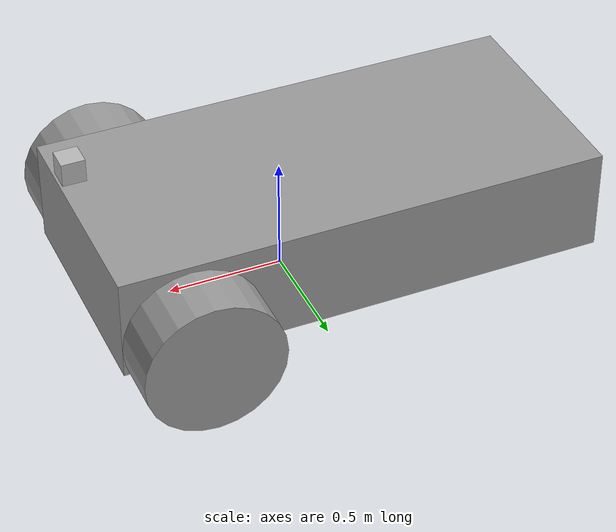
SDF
<?xml version='1.0'?>
<sdf version='1.6'>
  <model name='tutorial0'>
    <link name='link_0'>
      <pose frame=''>-0.180353 -0.000706 0.296848 0 -0 0</pose>
      <inertial>
        <mass>0.956185</mass>
        <inertia>
          <ixx>0.0959184</ixx>
          <ixy>0</ixy>
          <ixz>0</ixz>
          <iyy>0.373768</iyy>
          <iyz>0</iyz>
          <izz>0.437214</izz>
        </inertia>
        <pose frame=''>0 0 0 0 -0 0</pose>
      </inertial>
      <self_collide>0</self_collide>
      <kinematic>0</kinematic>
      <gravity>1</gravity>
      <visual name='visual'>
        <pose frame=''>0 0 0 0 -0 0</pose>
        <geometry>
          <box>
            <size>2.11825 1 0.451404</size>
          </box>
        </geometry>
        <material>
          <lighting>1</lighting>
          <script>
            <uri>file://media/materials/scripts/gazebo.material</uri>
            <name>Gazebo/Grey</name>
          </script>
          <ambient>0.3 0.3 0.3 1</ambient>
          <diffuse>0.7 0.7 0.7 1</diffuse>
          <specular>0.01 0.01 0.01 1</specular>
          <emissive>0 0 0 1</emissive>
          <shader type='vertex'>
            <normal_map>__default__</normal_map>
          </shader>
        </material>
        <cast_shadows>1</cast_shadows>
        <transparency>0</transparency>
      </visual>
      <collision name='collision'>
        <laser_retro>0</laser_retro>
        <max_contacts>10</max_contacts>
        <pose frame=''>0 0 0 0 -0 0</pose>
        <geometry>
          <box>
            <size>2.11825 1 0.451404</size>
          </box>
        </geometry>
        <surface>
          <friction>
            <ode>
              <mu>1</mu>
              <mu2>1</mu2>
              <fdir1>0 0 0</fdir1>
              <slip1>0</slip1>
              <slip2>0</slip2>
            </ode>
            <torsional>
              <coefficient>1</coefficient>
              <patch_radius>0</patch_radius>
              <surface_radius>0</surface_radius>
              <use_patch_radius>1</use_patch_radius>
              <ode>
                <slip>0</slip>
              </ode>
            </torsional>
          </friction>
          <bounce>
            <restitution_coefficient>0</restitution_coefficient>
            <threshold>1e+06</threshold>
          </bounce>
          <contact>
            <collide_without_contact>0</collide_without_contact>
            <collide_without_contact_bitmask>1</collide_without_contact_bitmask>
            <collide_bitmask>1</collide_bitmask>
            <ode>
              <soft_cfm>0</soft_cfm>
              <soft_erp>0.2</soft_erp>
              <kp>1e+13</kp>
              <kd>1</kd>
              <max_vel>0.01</max_vel>
              <min_depth>0</min_depth>
            </ode>
            <bullet>
              <split_impulse>1</split_impulse>
              <split_impulse_penetration_threshold>-0.01</split_impulse_penetration_threshold>
              <soft_cfm>0</soft_cfm>
              <soft_erp>0.2</soft_erp>
              <kp>1e+13</kp>
              <kd>1</kd>
            </bullet>
          </contact>
        </surface>
      </collision>
    </link>
    <link name='link_1'>
      <pose frame=''>0.578769 -0.625735 0.196848 1.5707 -0 0</pose>
      <inertial>
        <mass>1</mass>
        <inertia>
          <ixx>0.145833</ixx>
          <ixy>0</ixy>
          <ixz>0</ixz>
          <iyy>0.145833</iyy>
          <iyz>0</iyz>
          <izz>0.125</izz>
        </inertia>
        <pose frame=''>0 0 0 0 -0 0</pose>
      </inertial>
      <self_collide>0</self_collide>
      <kinematic>0</kinematic>
      <visual name='visual'>
        <pose frame=''>0 0 0 0 -0 0</pose>
        <geometry>
          <cylinder>
            <radius>0.3</radius>
            <length>0.25</length>
          </cylinder>
        </geometry>
        <material>
          <lighting>1</lighting>
          <script>
            <uri>file://media/materials/scripts/gazebo.material</uri>
            <name>Gazebo/Grey</name>
          </script>
          <ambient>0.3 0.3 0.3 1</ambient>
          <diffuse>0.7 0.7 0.7 1</diffuse>
          <specular>0.01 0.01 0.01 1</specular>
          <emissive>0 0 0 1</emissive>
          <shader type='vertex'>
            <normal_map>__default__</normal_map>
          </shader>
        </material>
        <cast_shadows>1</cast_shadows>
        <transparency>0</transparency>
      </visual>
      <collision name='collision'>
        <laser_retro>0</laser_retro>
        <max_contacts>10</max_contacts>
        <pose frame=''>0 0 0 0 -0 0</pose>
        <geometry>
          <cylinder>
            <radius>0.3</radius>
            <length>0.25</length>
          </cylinder>
        </geometry>
        <surface>
          <friction>
            <ode>
              <mu>1</mu>
              <mu2>1</mu2>
              <fdir1>0 0 0</fdir1>
              <slip1>0</slip1>
              <slip2>0</slip2>
            </ode>
            <torsional>
              <coefficient>1</coefficient>
              <patch_radius>0</patch_radius>
              <surface_radius>0</surface_radius>
              <use_patch_radius>1</use_patch_radius>
              <ode>
                <slip>0</slip>
              </ode>
            </torsional>
          </friction>
          <bounce>
            <restitution_coefficient>0</restitution_coefficient>
            <threshold>1e+06</threshold>
          </bounce>
          <contact>
            <collide_without_contact>0</collide_without_contact>
            <collide_without_contact_bitmask>1</collide_without_contact_bitmask>
            <collide_bitmask>1</collide_bitmask>
            <ode>
              <soft_cfm>0</soft_cfm>
              <soft_erp>0.2</soft_erp>
              <kp>1e+13</kp>
              <kd>1</kd>
              <max_vel>0.01</max_vel>
              <min_depth>0</min_depth>
            </ode>
            <bullet>
              <split_impulse>1</split_impulse>
              <split_impulse_penetration_threshold>-0.01</split_impulse_penetration_threshold>
              <soft_cfm>0</soft_cfm>
              <soft_erp>0.2</soft_erp>
              <kp>1e+13</kp>
              <kd>1</kd>
            </bullet>
          </contact>
        </surface>
      </collision>
    </link>
    <link name='link_1_clone'>
      <pose frame=''>0.578769 0.624323 0.196848 1.5707 -0 0</pose>
      <inertial>
        <mass>1</mass>
        <inertia>
          <ixx>0.145833</ixx>
          <ixy>0</ixy>
          <ixz>0</ixz>
          <iyy>0.145833</iyy>
          <iyz>0</iyz>
          <izz>0.125</izz>
        </inertia>
        <pose frame=''>0 0 0 0 -0 0</pose>
      </inertial>
      <self_collide>0</self_collide>
      <kinematic>0</kinematic>
      <visual name='visual'>
        <pose frame=''>0 0 0 0 -0 0</pose>
        <geometry>
          <cylinder>
            <radius>0.3</radius>
            <length>0.25</length>
          </cylinder>
        </geometry>
        <material>
          <lighting>1</lighting>
          <script>
            <uri>file://media/materials/scripts/gazebo.material</uri>
            <name>Gazebo/Grey</name>
          </script>
          <ambient>0.3 0.3 0.3 1</ambient>
          <diffuse>0.7 0.7 0.7 1</diffuse>
          <specular>0.01 0.01 0.01 1</specular>
          <emissive>0 0 0 1</emissive>
          <shader type='vertex'>
            <normal_map>__default__</normal_map>
          </shader>
        </material>
        <cast_shadows>1</cast_shadows>
        <transparency>0</transparency>
      </visual>
      <collision name='collision'>
        <laser_retro>0</laser_retro>
        <max_contacts>10</max_contacts>
        <pose frame=''>0 0 0 0 -0 0</pose>
        <geometry>
          <cylinder>
            <radius>0.3</radius>
            <length>0.25</length>
          </cylinder>
        </geometry>
        <surface>
          <friction>
            <ode>
              <mu>1</mu>
              <mu2>1</mu2>
              <fdir1>0 0 0</fdir1>
              <slip1>0</slip1>
              <slip2>0</slip2>
            </ode>
            <torsional>
              <coefficient>1</coefficient>
              <patch_radius>0</patch_radius>
              <surface_radius>0</surface_radius>
              <use_patch_radius>1</use_patch_radius>
              <ode>
                <slip>0</slip>
              </ode>
            </torsional>
          </friction>
          <bounce>
            <restitution_coefficient>0</restitution_coefficient>
            <threshold>1e+06</threshold>
          </bounce>
          <contact>
            <collide_without_contact>0</collide_without_contact>
            <collide_without_contact_bitmask>1</collide_without_contact_bitmask>
            <collide_bitmask>1</collide_bitmask>
            <ode>
              <soft_cfm>0</soft_cfm>
              <soft_erp>0.2</soft_erp>
              <kp>1e+13</kp>
              <kd>1</kd>
              <max_vel>0.01</max_vel>
              <min_depth>0</min_depth>
            </ode>
            <bullet>
              <split_impulse>1</split_impulse>
              <split_impulse_penetration_threshold>-0.01</split_impulse_penetration_threshold>
              <soft_cfm>0</soft_cfm>
              <soft_erp>0.2</soft_erp>
              <kp>1e+13</kp>
              <kd>1</kd>
            </bullet>
          </contact>
        </surface>
      </collision>
    </link>
    <link name='link_2'>
      <pose frame=''>-1.03947 -0.000706 0.096848 0 -0 0</pose>
      <inertial>
        <mass>1</mass>
        <inertia>
          <ixx>0.1</ixx>
          <ixy>0</ixy>
          <ixz>0</ixz>
          <iyy>0.1</iyy>
          <iyz>0</iyz>
          <izz>0.1</izz>
        </inertia>
        <pose frame=''>0 0 0 0 -0 0</pose>
      </inertial>
      <self_collide>0</self_collide>
      <kinematic>0</kinematic>
      <visual name='visual'>
        <pose frame=''>0 0 0 0 -0 0</pose>
        <geometry>
          <sphere>
            <radius>0.2</radius>
          </sphere>
        </geometry>
        <material>
          <lighting>1</lighting>
          <script>
            <uri>file://media/materials/scripts/gazebo.material</uri>
            <name>Gazebo/Grey</name>
          </script>
          <ambient>0.3 0.3 0.3 1</ambient>
          <diffuse>0.7 0.7 0.7 1</diffuse>
          <specular>0.01 0.01 0.01 1</specular>
          <emissive>0 0 0 1</emissive>
          <shader type='vertex'>
            <normal_map>__default__</normal_map>
          </shader>
        </material>
        <cast_shadows>1</cast_shadows>
        <transparency>0</transparency>
      </visual>
      <collision name='collision'>
        <laser_retro>0</laser_retro>
        <max_contacts>10</max_contacts>
        <pose frame=''>0 0 0 0 -0 0</pose>
        <geometry>
          <sphere>
            <radius>0.2</radius>
          </sphere>
        </geometry>
        <surface>
          <friction>
            <ode>
              <mu>1</mu>
              <mu2>1</mu2>
              <fdir1>0 0 0</fdir1>
              <slip1>0</slip1>
              <slip2>0</slip2>
            </ode>
            <torsional>
              <coefficient>1</coefficient>
              <patch_radius>0</patch_radius>
              <surface_radius>0</surface_radius>
              <use_patch_radius>1</use_patch_radius>
              <ode>
                <slip>0</slip>
              </ode>
            </torsional>
          </friction>
          <bounce>
            <restitution_coefficient>0</restitution_coefficient>
            <threshold>1e+06</threshold>
          </bounce>
          <contact>
            <collide_without_contact>0</collide_without_contact>
            <collide_without_contact_bitmask>1</collide_without_contact_bitmask>
            <collide_bitmask>1</collide_bitmask>
            <ode>
              <soft_cfm>0</soft_cfm>
              <soft_erp>0.2</soft_erp>
              <kp>1e+13</kp>
              <kd>1</kd>
              <max_vel>0.01</max_vel>
              <min_depth>0</min_depth>
            </ode>
            <bullet>
              <split_impulse>1</split_impulse>
              <split_impulse_penetration_threshold>-0.01</split_impulse_penetration_threshold>
              <soft_cfm>0</soft_cfm>
              <soft_erp>0.2</soft_erp>
              <kp>1e+13</kp>
              <kd>1</kd>
            </bullet>
          </contact>
        </surface>
      </collision>
    </link>
    <model name='depth_camera'>
      <link name='link'>
        <pose frame=''>0 0 0.05 0 -0 0</pose>
        <inertial>
          <mass>0.1</mass>
          <inertia>
            <ixx>0.000166667</ixx>
            <iyy>0.000166667</iyy>
            <izz>0.000166667</izz>
            <ixy>0</ixy>
            <ixz>0</ixz>
            <iyz>0</iyz>
          </inertia>
        </inertial>
        <collision name='collision'>
          <geometry>
            <box>
              <size>0.1 0.1 0.1</size>
            </box>
          </geometry>
          <max_contacts>10</max_contacts>
          <surface>
            <contact>
              <ode/>
            </contact>
            <bounce/>
            <friction>
              <torsional>
                <ode/>
              </torsional>
              <ode/>
            </friction>
          </surface>
        </collision>
        <visual name='visual'>
          <geometry>
            <box>
              <size>0.1 0.1 0.1</size>
            </box>
          </geometry>
        </visual>
        <sensor name='camera' type='depth'>
          <camera name='__default__'>
            <horizontal_fov>1.047</horizontal_fov>
            <image>
              <width>320</width>
              <height>240</height>
            </image>
            <clip>
              <near>0.1</near>
              <far>100</far>
            </clip>
          </camera>
          <always_on>1</always_on>
          <update_rate>30</update_rate>
          <visualize>1</visualize>
        </sensor>
        <self_collide>0</self_collide>
        <kinematic>0</kinematic>
        <gravity>1</gravity>
      </link>
      <pose frame=''>0.88619 0.002824 0.712608 0 -0 0</pose>
    </model>
    <joint name='link_0_JOINT_0' type='revolute'>
      <parent>link_0</parent>
      <child>link_1</child>
      <pose frame=''>0 0 0 0 -0 0</pose>
      <axis>
        <xyz>0 0 1</xyz>
        <use_parent_model_frame>0</use_parent_model_frame>
        <limit>
          <lower>-1.79769e+308</lower>
          <upper>1.79769e+308</upper>
          <effort>-1</effort>
          <velocity>-1</velocity>
        </limit>
        <dynamics>
          <spring_reference>0</spring_reference>
          <spring_stiffness>0</spring_stiffness>
          <damping>0</damping>
          <friction>0</friction>
        </dynamics>
      </axis>
      <physics>
        <ode>
          <limit>
            <cfm>0</cfm>
            <erp>0.2</erp>
          </limit>
          <suspension>
            <cfm>0</cfm>
            <erp>0.2</erp>
          </suspension>
        </ode>
      </physics>
    </joint>
    <joint name='link_0_JOINT_1' type='revolute'>
      <parent>link_0</parent>
      <child>link_1_clone</child>
      <pose frame=''>0 0 0 0 -0 0</pose>
      <axis>
        <xyz>0 0 1</xyz>
        <use_parent_model_frame>0</use_parent_model_frame>
        <limit>
          <lower>-1.79769e+308</lower>
          <upper>1.79769e+308</upper>
          <effort>-1</effort>
          <velocity>-1</velocity>
        </limit>
        <dynamics>
          <spring_reference>0</spring_reference>
          <spring_stiffness>0</spring_stiffness>
          <damping>0</damping>
          <friction>0</friction>
        </dynamics>
      </axis>
      <physics>
        <ode>
          <limit>
            <cfm>0</cfm>
            <erp>0.2</erp>
          </limit>
          <suspension>
            <cfm>0</cfm>
            <erp>0.2</erp>
          </suspension>
        </ode>
      </physics>
    </joint>
    <joint name='link_0_JOINT_2' type='ball'>
      <parent>link_0</parent>
      <child>link_2</child>
      <pose frame=''>0 0 0 0 -0 0</pose>
      <physics>
        <ode>
          <limit>
            <cfm>0</cfm>
            <erp>0.2</erp>
          </limit>
          <suspension>
            <cfm>0</cfm>
            <erp>0.2</erp>
          </suspension>
        </ode>
      </physics>
    </joint>
    <joint name='link_0_JOINT_3' type='fixed'>
      <parent>link_0</parent>
      <child>depth_camera::link</child>
      <pose frame=''>0 0 0 0 -0 0</pose>
      <physics>
        <ode>
          <limit>
            <cfm>0</cfm>
            <erp>0.2</erp>
          </limit>
          <suspension>
            <cfm>0</cfm>
            <erp>0.2</erp>
          </suspension>
        </ode>
      </physics>
    </joint>
    <static>0</static>
    <allow_auto_disable>1</allow_auto_disable>
    <plugin name='follower' filename='libFollowerPlugin.so'/>
  </model>
</sdf>
